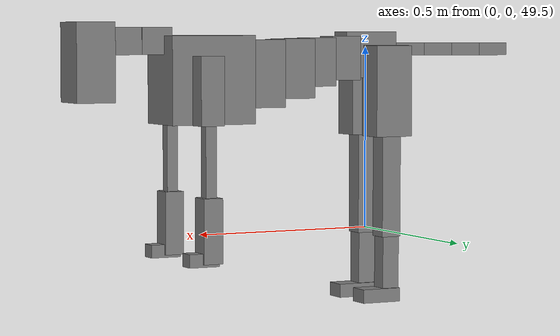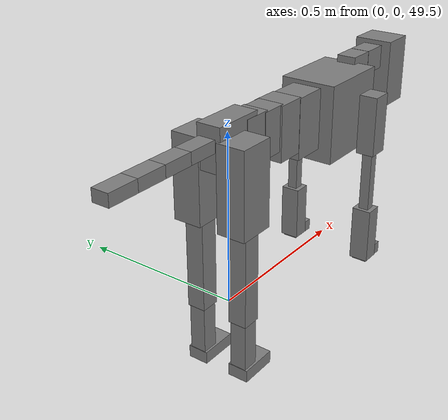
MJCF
<mujoco model="dog">

    <default>
        <joint armature="0.02" stiffness="1" damping="0.2" limited="true"/>
        <geom condim="3" friction="1 0.05 0.05" margin="0.01"/>
        <motor ctrllimited="true" ctrlrange="-1.0 1.0" forcelimited="true" gear="50"/>
    </default>

    <compiler inertiafromgeom="true" angle="radian"/>

    <option timestep="0.016" iterations="50" tolerance="1e-10" solver="Newton" jacobian="dense" cone="pyramidal"/>

    <size nconmax="20000" njmax="60000" nstack="5000000"/>
    <visual>
        <map force="0.1" zfar="30"/>
        <rgba haze="0.15 0.25 0.35 1"/>
        <quality shadowsize="2048"/>
        <global offwidth="800" offheight="800"/>
    </visual>

    <asset>
        <texture type="skybox" builtin="gradient" rgb1="0.3 0.5 0.7" rgb2="0 0 0" width="512" height="512"/>
        <texture name="texplane" type="2d" builtin="checker" rgb1=".2 .3 .4" rgb2=".1 0.15 0.2" width="512" height="512"
                 mark="cross" markrgb=".8 .8 .8"/>
        <texture name="texgeom" type="cube" builtin="flat" mark="cross" width="127" height="1278" rgb1="0.8 0.6 0.4"
                 rgb2="0.8 0.6 0.4" markrgb="1 1 1" random="0.01"/>

        <material name="matplane" reflectance="0.3" texture="texplane" texrepeat="1 1" texuniform="true"/>
        <material name="matgeom" texture="texgeom" texuniform="true" rgba="0.8 0.6 .4 1"/>
    </asset>

    <worldbody>
        <geom name="floor" pos="0 0 0" size="0 0 .25" type="plane" material="matplane" condim="3"/>

        <light directional="false" diffuse=".2 .2 .2" specular="0 0 0" pos="0 0 5" dir="0 0 -1" castshadow="false"/>
        <light mode="targetbodycom" target="torso" directional="false" diffuse=".8 .8 .8" specular="0.3 0.3 0.3"
               pos="0 0 4.0" dir="0 0 -1"/>

        <body name="root" pos="0 0 50">
            <freejoint name="root_1"/>
            <geom type="box" pos="0 0 -0.02" size="0.0774  0.0358  0.063" density="2030"/>

            <body name="spine1" pos="0.054 0 0">
                <joint name="spine1_y" axis="0 1 0" range="0 0.7" limited="true"/>
                <geom type="box" pos="0.02375 0 -0.03" size="0.04375  0.0375  0.05985" density="2030"/>

                <body name="spine2" pos="0.0612 0 0">
                    <joint name="spine2_y" axis="0 1 0" range="-0.15 0.15" limited="true"/>
                    <geom type="box" pos="0.03555  0  -0.04" size="0.04055  0.039  0.06615" density="2030"/>

                    <body name="spine3" pos="0.0730 0 0">
                        <joint name="spine3_y" axis="0 1 0" range="-0.15 0.15" limited="true"/>
                        <geom type="box" pos="0.03555  0  -0.057" size="0.04555  0.0445  0.081" density="2030"/>

                        <body name="spine4" pos="0.0780 0 0">
                            <joint name="spine4_y" axis="0 1 0" range="-0.15 0.15" limited="true"/>
                            <geom type="box" pos="0.05265  0  -0.07" size="0.05265  0.045  0.09135" density="2030"/>

                            <body name="torso" pos="0.1082 0 0">
                                <joint name="torso_y" axis="0 1 0" range="-0.15 0.15" limited="true"/>
                                <geom type="box" pos="0.11925  0  -0.085" size="0.11925  0.085  0.11745"
                                      density="2030"/>

                                <body name="neck1" pos="0.2160  0   0.0180">
                                    <joint name="neck1_y" axis="0 1 0" range="-1.2  -1" limited="true"/>
                                    <geom type="box" pos="0.0423  0  0" size="0.0423  0.03  0.036" density="2325"/>

                                    <body name="neck2" pos="0.0853  0  0">
                                        <joint name="neck2_y" axis="0 1 0" range="0.1  0" limited="true"/>
                                        <geom type="box" pos="0.0423  0  0" size="0.0423  0.03  0.036" density="2325"/>

                                        <body name="head" pos="0.0853  0  0">
                                            <joint name="head_y" axis="0 1 0" range="-0.3  -0.2" limited="true"/>
                                            <geom type="box" pos="0.0531  0  -0.055" size="0.0531  0.06  0.1044"
                                                  density="4030"/>

                                        </body>
                                    </body>
                                </body>

                                <body name="front_shoulder" pos="0.156  0   -0.0480">
                                    <joint name="front_shoulder_y" axis="0 1 0" range="-1 1.5" limited="true"/>
                                    <geom type="box" pos="0 0.13 -0.0639" size="0.0327  0.0279  0.0906" density="1158"/>
                                    <geom type="box" pos="0 -0.13 -0.0639" size="0.0327  0.0279  0.0906"
                                          density="1158"/>

                                    <body name="front_elbow" pos="0  0  -0.1279">
                                        <joint name="front_elbow_y" axis="0 1 0" range="-2 0" limited="true"/>
                                        <geom type="box" pos="0 0.13 -0.1135" size="0.0150  0.0154  0.1135"
                                              density="1081"/>
                                        <geom type="box" pos="0 -0.13 -0.1135" size="0.0150  0.0154  0.1135"
                                              density="1081"/>

                                        <body name="front_wrist" pos="0  0  -0.2271">
                                            <joint name="front_wrist_y" axis="0 1 0" range="-0.2 0" limited="true"/>
                                            <geom type="box" pos="0 0.13 -0.0726" size="0.0266  0.0296  0.0858"
                                                  density="1664"/>
                                            <geom type="box" pos="0 -0.13 -0.0726" size="0.0266  0.0296  0.0858"
                                                  density="1664"/>

                                            <body name="front_finger_end" pos="0  0  -0.1453">
                                                <joint name="front_finger_y" axis="0 1 0" range="-0.4 1"
                                                       limited="true"/>
                                                <geom type="box" pos="0.0231  0.13  -0.0026"
                                                      size="0.0424  0.0231  0.0176" density="1515"/>
                                                <geom type="box" pos="0.0231  -0.13  -0.0026"
                                                      size="0.0424  0.0231  0.0176" density="1515"/>

                                            </body>

                                        </body>
                                    </body>
                                </body>

                            </body>
                        </body>
                    </body>
                </body>
            </body>

            <body name="back_hip" pos="-0.03 0 -0.018">
                <joint name="back_hip_y" axis="0 1 0" range="-1.5 0.3" limited="true"/>
                <geom type="box" pos="0 0.07 -0.1015" size="0.0540  0.0424  0.1243" density="1154"/>
                <geom type="box" pos="0 -0.07 -0.1015" size="0.0540  0.0424  0.1243" density="1154"/>

                <body name="back_knee" pos="0  0  -0.2029">
                    <joint name="back_knee_y" axis="0 1 0" range="0 2.8" limited="true"/>
                    <geom type="box" pos="0 0.07 -0.1414" size="0.0279  0.0275  0.1570" density="1227"/>
                    <geom type="box" pos="0 -0.07 -0.1414" size="0.0279  0.0275  0.1570" density="1227"/>

                    <body name="back_ankle" pos="0  0  -0.2829">
                        <joint name="back_ankle_y" axis="0 1 0" range="-2.2 0" limited="true"/>
                        <geom type="box" pos="0 0.07 -0.0862" size="0.0243  0.0243  0.0974" density="1284"/>
                        <geom type="box" pos="0 -0.07 -0.0862" size="0.0243  0.0243  0.0974" density="1284"/>

                        <body name="back_toe_end" pos="0  0  -0.1723">
                            <joint name="back_toe_y" axis="0 1 0" range="-0.4 1" limited="true"/>
                            <geom type="box" pos="0.0308  0.07  -0.0036" size="0.0564  0.0308  0.0186" density="1515"/>
                            <geom type="box" pos="0.0308  -0.07  -0.0036" size="0.0564  0.0308  0.0186" density="1515"/>

                        </body>
                    </body>
                </body>
            </body>

            <body name="tail1" pos="-0.074 0 -0.006">
                <joint name="tail1_y" axis="0 1 0" range="-0.2 0.2" limited="true"/>
                <geom type="box" pos="-0.0536  0  0" size="0.045  0.025  0.0175" density="1587"/>

                <body name="tail2" pos="-0.09 0 0">
                    <joint name="tail2_y" axis="0 1 0" range="-0.2 0.2" limited="true"/>
                    <geom type="box" pos="-0.0536  0  0" size="0.045  0.025  0.0175" density="1587"/>

                    <body name="tail3" pos="-0.09 0 0">
                        <joint name="tail3_y" axis="0 1 0" range="-0.2 0.2" limited="true"/>
                        <geom type="box" pos="-0.0536  0  0" size="0.045  0.025  0.0175" density="1587"/>

                        <body name="tail4" pos="-0.09 0 0">
                            <joint name="tail4_y" axis="0 1 0" range="-0.2 0.2" limited="true"/>
                            <geom type="box" pos="-0.0536  0  0" size="0.045  0.025  0.0175" density="1587"/>

                        </body>
                    </body>
                </body>
            </body>
        </body>
    </worldbody>

    <actuator>
        <motor joint="spine1_y" forcerange="-150 150     "/>
        <motor joint="spine2_y" forcerange="-150 150     "/>
        <motor joint="spine3_y" forcerange="-150 150     "/>
        <motor joint="spine4_y" forcerange="-150 150     "/>
        <motor joint="torso_y" forcerange="-150 150     "/>
        <motor joint="neck1_y" forcerange="-100 100       "/>
        <motor joint="neck2_y" forcerange="-100 100       "/>
        <motor joint="head_y" forcerange="-150 150       "/>
        <motor joint="front_shoulder_y" forcerange="-140.30 145.86"/>
        <motor joint="front_elbow_y" forcerange="-103.26 108.59"/>
        <motor joint="front_wrist_y" forcerange="-110.38 126.10"/>
        <motor joint="front_finger_y" forcerange="-44.60 38.84"/>
        <motor joint="back_hip_y" forcerange="-385.08 379.78"/>
        <motor joint="back_knee_y" forcerange="-343.43 256.58"/>
        <motor joint="back_angle_y" forcerange="-163.47 124.57"/>
        <motor joint="back_toe_y" forcerange="-44.54 121.54"/>
        <motor joint="tail1_y" forcerange="-50 50     "/>
        <motor joint="tail2_y" forcerange="-50 50     "/>
        <motor joint="tail3_y" forcerange="-50 50     "/>
        <motor joint="tail4_y" forcerange="-50 50     "/>
    </actuator>
</mujoco>
